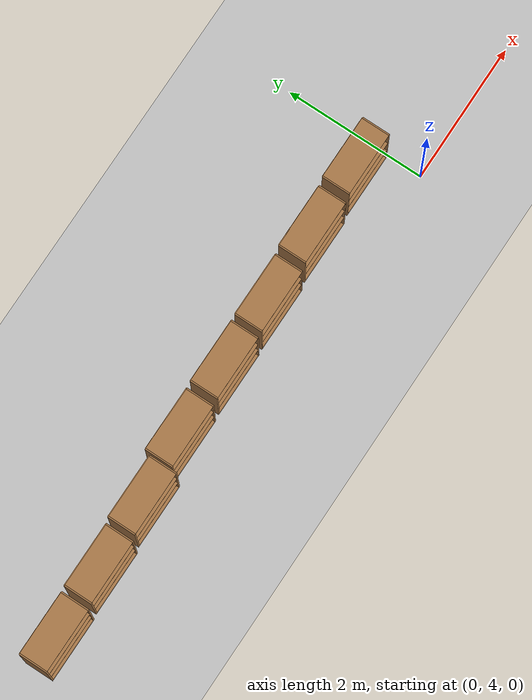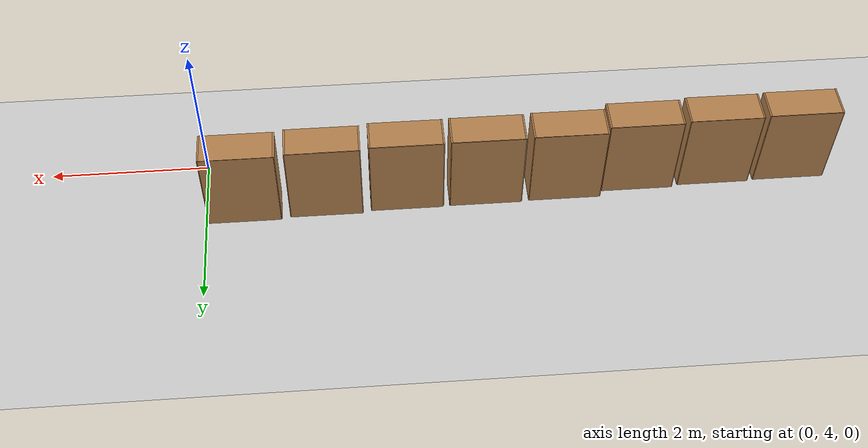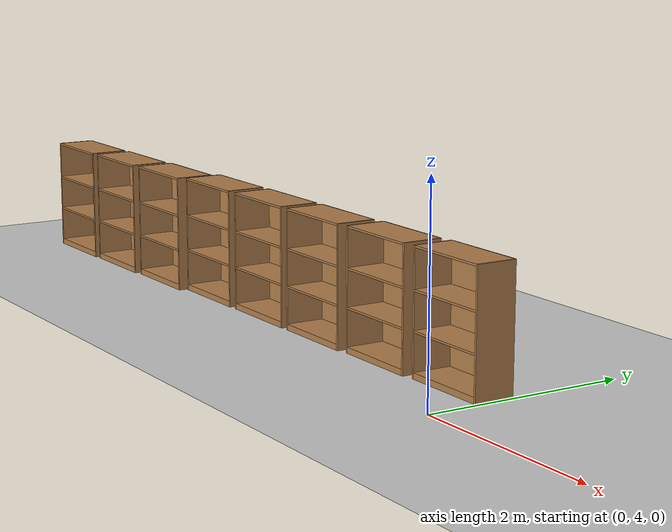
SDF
<sdf version="1.7">
 <world name="default">
  <model name="ground_plane">
   <static>1</static>
   <link name="link">
    <collision name="collision">
     <geometry><plane><normal>0 0 1</normal><size>100 100</size></plane></geometry>
     <surface>
      <contact><collide_bitmask>65535</collide_bitmask></contact>
      <friction><ode><mu>100</mu><mu2>50</mu2></ode></friction>
     </surface>
    </collision>
    <visual name="visual">
     <cast_shadows>0</cast_shadows>
     <geometry><plane><normal>0 0 1</normal><size>100 100</size></plane></geometry>
     <material>
      <script><uri>file://media/materials/scripts/gazebo.material</uri><name>Gazebo/Grey</name></script>
     </material>
    </visual>
   </link>
  </model>
  <model name="bookshelf">
   <static>1</static>
   <link name="link">
    <inertial><mass>1</mass></inertial>
    <collision name="back">
     <pose>0 0.005 0.6 0 -0 0</pose>
     <geometry><box><size>0.9 0.01 1.2</size></box></geometry>
    </collision>
    <visual name="visual1">
     <pose>0 0.005 0.6 0 -0 0</pose>
     <geometry><box><size>0.9 0.01 1.2</size></box></geometry>
     <material>
      <script><uri>file://media/materials/scripts/gazebo.material</uri><name>Gazebo/Wood</name></script>
     </material>
    </visual>
    <collision name="left_side">
     <pose>0.45 -0.195 0.6 0 -0 0</pose>
     <geometry><box><size>0.02 0.4 1.2</size></box></geometry>
    </collision>
    <visual name="visual2">
     <pose>0.45 -0.195 0.6 0 -0 0</pose>
     <geometry><box><size>0.02 0.4 1.2</size></box></geometry>
     <material>
      <script><uri>file://media/materials/scripts/gazebo.material</uri><name>Gazebo/Wood</name></script>
     </material>
    </visual>
    <collision name="right_side">
     <pose>-0.45 -0.195 0.6 0 -0 0</pose>
     <geometry><box><size>0.02 0.4 1.2</size></box></geometry>
    </collision>
    <visual name="visual3">
     <pose>-0.45 -0.195 0.6 0 -0 0</pose>
     <geometry><box><size>0.02 0.4 1.2</size></box></geometry>
     <material>
      <script><uri>file://media/materials/scripts/gazebo.material</uri><name>Gazebo/Wood</name></script>
     </material>
    </visual>
    <collision name="bottom">
     <pose>0 -0.195 0.03 0 -0 0</pose>
     <geometry><box><size>0.88 0.4 0.06</size></box></geometry>
    </collision>
    <visual name="visual4">
     <pose>0 -0.195 0.03 0 -0 0</pose>
     <geometry><box><size>0.88 0.4 0.06</size></box></geometry>
     <material>
      <script><uri>file://media/materials/scripts/gazebo.material</uri><name>Gazebo/Wood</name></script>
     </material>
    </visual>
    <collision name="top">
     <pose>0 -0.195 1.19 0 -0 0</pose>
     <geometry><box><size>0.88 0.4 0.02</size></box></geometry>
    </collision>
    <visual name="visual5">
     <pose>0 -0.195 1.19 0 -0 0</pose>
     <geometry><box><size>0.88 0.4 0.02</size></box></geometry>
     <material>
      <script><uri>file://media/materials/scripts/gazebo.material</uri><name>Gazebo/Wood</name></script>
     </material>
    </visual>
    <collision name="low_shelf">
     <pose>0 -0.195 0.43 0 -0 0</pose>
     <geometry><box><size>0.88 0.4 0.02</size></box></geometry>
    </collision>
    <visual name="visual6">
     <pose>0 -0.195 0.43 0 -0 0</pose>
     <geometry><box><size>0.88 0.4 0.02</size></box></geometry>
     <material>
      <script><uri>file://media/materials/scripts/gazebo.material</uri><name>Gazebo/Wood</name></script>
     </material>
    </visual>
    <collision name="high_shelf">
     <pose>0 -0.195 0.8 0 -0 0</pose>
     <geometry><box><size>0.88 0.4 0.02</size></box></geometry>
    </collision>
    <visual name="visual7">
     <pose>0 -0.195 0.8 0 -0 0</pose>
     <geometry><box><size>0.88 0.4 0.02</size></box></geometry>
     <material>
      <script><uri>file://media/materials/scripts/gazebo.material</uri><name>Gazebo/Wood</name></script>
     </material>
    </visual>
   </link>
   <pose>-7.44112 4.68011 0 0 -0 0</pose>
  </model>
  <model name="bookshelf_0">
   <static>1</static>
   <link name="link">
    <inertial><mass>1</mass></inertial>
    <collision name="back">
     <pose>0 0.005 0.6 0 -0 0</pose>
     <geometry><box><size>0.9 0.01 1.2</size></box></geometry>
    </collision>
    <visual name="visual1">
     <pose>0 0.005 0.6 0 -0 0</pose>
     <geometry><box><size>0.9 0.01 1.2</size></box></geometry>
     <material>
      <script><uri>file://media/materials/scripts/gazebo.material</uri><name>Gazebo/Wood</name></script>
     </material>
    </visual>
    <collision name="left_side">
     <pose>0.45 -0.195 0.6 0 -0 0</pose>
     <geometry><box><size>0.02 0.4 1.2</size></box></geometry>
    </collision>
    <visual name="visual2">
     <pose>0.45 -0.195 0.6 0 -0 0</pose>
     <geometry><box><size>0.02 0.4 1.2</size></box></geometry>
     <material>
      <script><uri>file://media/materials/scripts/gazebo.material</uri><name>Gazebo/Wood</name></script>
     </material>
    </visual>
    <collision name="right_side">
     <pose>-0.45 -0.195 0.6 0 -0 0</pose>
     <geometry><box><size>0.02 0.4 1.2</size></box></geometry>
    </collision>
    <visual name="visual3">
     <pose>-0.45 -0.195 0.6 0 -0 0</pose>
     <geometry><box><size>0.02 0.4 1.2</size></box></geometry>
     <material>
      <script><uri>file://media/materials/scripts/gazebo.material</uri><name>Gazebo/Wood</name></script>
     </material>
    </visual>
    <collision name="bottom">
     <pose>0 -0.195 0.03 0 -0 0</pose>
     <geometry><box><size>0.88 0.4 0.06</size></box></geometry>
    </collision>
    <visual name="visual4">
     <pose>0 -0.195 0.03 0 -0 0</pose>
     <geometry><box><size>0.88 0.4 0.06</size></box></geometry>
     <material>
      <script><uri>file://media/materials/scripts/gazebo.material</uri><name>Gazebo/Wood</name></script>
     </material>
    </visual>
    <collision name="top">
     <pose>0 -0.195 1.19 0 -0 0</pose>
     <geometry><box><size>0.88 0.4 0.02</size></box></geometry>
    </collision>
    <visual name="visual5">
     <pose>0 -0.195 1.19 0 -0 0</pose>
     <geometry><box><size>0.88 0.4 0.02</size></box></geometry>
     <material>
      <script><uri>file://media/materials/scripts/gazebo.material</uri><name>Gazebo/Wood</name></script>
     </material>
    </visual>
    <collision name="low_shelf">
     <pose>0 -0.195 0.43 0 -0 0</pose>
     <geometry><box><size>0.88 0.4 0.02</size></box></geometry>
    </collision>
    <visual name="visual6">
     <pose>0 -0.195 0.43 0 -0 0</pose>
     <geometry><box><size>0.88 0.4 0.02</size></box></geometry>
     <material>
      <script><uri>file://media/materials/scripts/gazebo.material</uri><name>Gazebo/Wood</name></script>
     </material>
    </visual>
    <collision name="high_shelf">
     <pose>0 -0.195 0.8 0 -0 0</pose>
     <geometry><box><size>0.88 0.4 0.02</size></box></geometry>
    </collision>
    <visual name="visual7">
     <pose>0 -0.195 0.8 0 -0 0</pose>
     <geometry><box><size>0.88 0.4 0.02</size></box></geometry>
     <material>
      <script><uri>file://media/materials/scripts/gazebo.material</uri><name>Gazebo/Wood</name></script>
     </material>
    </visual>
   </link>
   <pose>-6.45559 4.69615 0 0 -0 0</pose>
  </model>
  <model name="bookshelf_1">
   <static>1</static>
   <link name="link">
    <inertial><mass>1</mass></inertial>
    <collision name="back">
     <pose>0 0.005 0.6 0 -0 0</pose>
     <geometry><box><size>0.9 0.01 1.2</size></box></geometry>
    </collision>
    <visual name="visual1">
     <pose>0 0.005 0.6 0 -0 0</pose>
     <geometry><box><size>0.9 0.01 1.2</size></box></geometry>
     <material>
      <script><uri>file://media/materials/scripts/gazebo.material</uri><name>Gazebo/Wood</name></script>
     </material>
    </visual>
    <collision name="left_side">
     <pose>0.45 -0.195 0.6 0 -0 0</pose>
     <geometry><box><size>0.02 0.4 1.2</size></box></geometry>
    </collision>
    <visual name="visual2">
     <pose>0.45 -0.195 0.6 0 -0 0</pose>
     <geometry><box><size>0.02 0.4 1.2</size></box></geometry>
     <material>
      <script><uri>file://media/materials/scripts/gazebo.material</uri><name>Gazebo/Wood</name></script>
     </material>
    </visual>
    <collision name="right_side">
     <pose>-0.45 -0.195 0.6 0 -0 0</pose>
     <geometry><box><size>0.02 0.4 1.2</size></box></geometry>
    </collision>
    <visual name="visual3">
     <pose>-0.45 -0.195 0.6 0 -0 0</pose>
     <geometry><box><size>0.02 0.4 1.2</size></box></geometry>
     <material>
      <script><uri>file://media/materials/scripts/gazebo.material</uri><name>Gazebo/Wood</name></script>
     </material>
    </visual>
    <collision name="bottom">
     <pose>0 -0.195 0.03 0 -0 0</pose>
     <geometry><box><size>0.88 0.4 0.06</size></box></geometry>
    </collision>
    <visual name="visual4">
     <pose>0 -0.195 0.03 0 -0 0</pose>
     <geometry><box><size>0.88 0.4 0.06</size></box></geometry>
     <material>
      <script><uri>file://media/materials/scripts/gazebo.material</uri><name>Gazebo/Wood</name></script>
     </material>
    </visual>
    <collision name="top">
     <pose>0 -0.195 1.19 0 -0 0</pose>
     <geometry><box><size>0.88 0.4 0.02</size></box></geometry>
    </collision>
    <visual name="visual5">
     <pose>0 -0.195 1.19 0 -0 0</pose>
     <geometry><box><size>0.88 0.4 0.02</size></box></geometry>
     <material>
      <script><uri>file://media/materials/scripts/gazebo.material</uri><name>Gazebo/Wood</name></script>
     </material>
    </visual>
    <collision name="low_shelf">
     <pose>0 -0.195 0.43 0 -0 0</pose>
     <geometry><box><size>0.88 0.4 0.02</size></box></geometry>
    </collision>
    <visual name="visual6">
     <pose>0 -0.195 0.43 0 -0 0</pose>
     <geometry><box><size>0.88 0.4 0.02</size></box></geometry>
     <material>
      <script><uri>file://media/materials/scripts/gazebo.material</uri><name>Gazebo/Wood</name></script>
     </material>
    </visual>
    <collision name="high_shelf">
     <pose>0 -0.195 0.8 0 -0 0</pose>
     <geometry><box><size>0.88 0.4 0.02</size></box></geometry>
    </collision>
    <visual name="visual7">
     <pose>0 -0.195 0.8 0 -0 0</pose>
     <geometry><box><size>0.88 0.4 0.02</size></box></geometry>
     <material>
      <script><uri>file://media/materials/scripts/gazebo.material</uri><name>Gazebo/Wood</name></script>
     </material>
    </visual>
   </link>
   <pose>-5.46795 4.72644 0 0 -0 0</pose>
  </model>
  <model name="bookshelf_2">
   <static>1</static>
   <link name="link">
    <inertial><mass>1</mass></inertial>
    <collision name="back">
     <pose>0 0.005 0.6 0 -0 0</pose>
     <geometry><box><size>0.9 0.01 1.2</size></box></geometry>
    </collision>
    <visual name="visual1">
     <pose>0 0.005 0.6 0 -0 0</pose>
     <geometry><box><size>0.9 0.01 1.2</size></box></geometry>
     <material>
      <script><uri>file://media/materials/scripts/gazebo.material</uri><name>Gazebo/Wood</name></script>
     </material>
    </visual>
    <collision name="left_side">
     <pose>0.45 -0.195 0.6 0 -0 0</pose>
     <geometry><box><size>0.02 0.4 1.2</size></box></geometry>
    </collision>
    <visual name="visual2">
     <pose>0.45 -0.195 0.6 0 -0 0</pose>
     <geometry><box><size>0.02 0.4 1.2</size></box></geometry>
     <material>
      <script><uri>file://media/materials/scripts/gazebo.material</uri><name>Gazebo/Wood</name></script>
     </material>
    </visual>
    <collision name="right_side">
     <pose>-0.45 -0.195 0.6 0 -0 0</pose>
     <geometry><box><size>0.02 0.4 1.2</size></box></geometry>
    </collision>
    <visual name="visual3">
     <pose>-0.45 -0.195 0.6 0 -0 0</pose>
     <geometry><box><size>0.02 0.4 1.2</size></box></geometry>
     <material>
      <script><uri>file://media/materials/scripts/gazebo.material</uri><name>Gazebo/Wood</name></script>
     </material>
    </visual>
    <collision name="bottom">
     <pose>0 -0.195 0.03 0 -0 0</pose>
     <geometry><box><size>0.88 0.4 0.06</size></box></geometry>
    </collision>
    <visual name="visual4">
     <pose>0 -0.195 0.03 0 -0 0</pose>
     <geometry><box><size>0.88 0.4 0.06</size></box></geometry>
     <material>
      <script><uri>file://media/materials/scripts/gazebo.material</uri><name>Gazebo/Wood</name></script>
     </material>
    </visual>
    <collision name="top">
     <pose>0 -0.195 1.19 0 -0 0</pose>
     <geometry><box><size>0.88 0.4 0.02</size></box></geometry>
    </collision>
    <visual name="visual5">
     <pose>0 -0.195 1.19 0 -0 0</pose>
     <geometry><box><size>0.88 0.4 0.02</size></box></geometry>
     <material>
      <script><uri>file://media/materials/scripts/gazebo.material</uri><name>Gazebo/Wood</name></script>
     </material>
    </visual>
    <collision name="low_shelf">
     <pose>0 -0.195 0.43 0 -0 0</pose>
     <geometry><box><size>0.88 0.4 0.02</size></box></geometry>
    </collision>
    <visual name="visual6">
     <pose>0 -0.195 0.43 0 -0 0</pose>
     <geometry><box><size>0.88 0.4 0.02</size></box></geometry>
     <material>
      <script><uri>file://media/materials/scripts/gazebo.material</uri><name>Gazebo/Wood</name></script>
     </material>
    </visual>
    <collision name="high_shelf">
     <pose>0 -0.195 0.8 0 -0 0</pose>
     <geometry><box><size>0.88 0.4 0.02</size></box></geometry>
    </collision>
    <visual name="visual7">
     <pose>0 -0.195 0.8 0 -0 0</pose>
     <geometry><box><size>0.88 0.4 0.02</size></box></geometry>
     <material>
      <script><uri>file://media/materials/scripts/gazebo.material</uri><name>Gazebo/Wood</name></script>
     </material>
    </visual>
   </link>
   <pose>-4.52722 4.81359 0 0 -0 0</pose>
  </model>
  <model name="bookshelf_3">
   <static>1</static>
   <link name="link">
    <inertial><mass>1</mass></inertial>
    <collision name="back">
     <pose>0 0.005 0.6 0 -0 0</pose>
     <geometry><box><size>0.9 0.01 1.2</size></box></geometry>
    </collision>
    <visual name="visual1">
     <pose>0 0.005 0.6 0 -0 0</pose>
     <geometry><box><size>0.9 0.01 1.2</size></box></geometry>
     <material>
      <script><uri>file://media/materials/scripts/gazebo.material</uri><name>Gazebo/Wood</name></script>
     </material>
    </visual>
    <collision name="left_side">
     <pose>0.45 -0.195 0.6 0 -0 0</pose>
     <geometry><box><size>0.02 0.4 1.2</size></box></geometry>
    </collision>
    <visual name="visual2">
     <pose>0.45 -0.195 0.6 0 -0 0</pose>
     <geometry><box><size>0.02 0.4 1.2</size></box></geometry>
     <material>
      <script><uri>file://media/materials/scripts/gazebo.material</uri><name>Gazebo/Wood</name></script>
     </material>
    </visual>
    <collision name="right_side">
     <pose>-0.45 -0.195 0.6 0 -0 0</pose>
     <geometry><box><size>0.02 0.4 1.2</size></box></geometry>
    </collision>
    <visual name="visual3">
     <pose>-0.45 -0.195 0.6 0 -0 0</pose>
     <geometry><box><size>0.02 0.4 1.2</size></box></geometry>
     <material>
      <script><uri>file://media/materials/scripts/gazebo.material</uri><name>Gazebo/Wood</name></script>
     </material>
    </visual>
    <collision name="bottom">
     <pose>0 -0.195 0.03 0 -0 0</pose>
     <geometry><box><size>0.88 0.4 0.06</size></box></geometry>
    </collision>
    <visual name="visual4">
     <pose>0 -0.195 0.03 0 -0 0</pose>
     <geometry><box><size>0.88 0.4 0.06</size></box></geometry>
     <material>
      <script><uri>file://media/materials/scripts/gazebo.material</uri><name>Gazebo/Wood</name></script>
     </material>
    </visual>
    <collision name="top">
     <pose>0 -0.195 1.19 0 -0 0</pose>
     <geometry><box><size>0.88 0.4 0.02</size></box></geometry>
    </collision>
    <visual name="visual5">
     <pose>0 -0.195 1.19 0 -0 0</pose>
     <geometry><box><size>0.88 0.4 0.02</size></box></geometry>
     <material>
      <script><uri>file://media/materials/scripts/gazebo.material</uri><name>Gazebo/Wood</name></script>
     </material>
    </visual>
    <collision name="low_shelf">
     <pose>0 -0.195 0.43 0 -0 0</pose>
     <geometry><box><size>0.88 0.4 0.02</size></box></geometry>
    </collision>
    <visual name="visual6">
     <pose>0 -0.195 0.43 0 -0 0</pose>
     <geometry><box><size>0.88 0.4 0.02</size></box></geometry>
     <material>
      <script><uri>file://media/materials/scripts/gazebo.material</uri><name>Gazebo/Wood</name></script>
     </material>
    </visual>
    <collision name="high_shelf">
     <pose>0 -0.195 0.8 0 -0 0</pose>
     <geometry><box><size>0.88 0.4 0.02</size></box></geometry>
    </collision>
    <visual name="visual7">
     <pose>0 -0.195 0.8 0 -0 0</pose>
     <geometry><box><size>0.88 0.4 0.02</size></box></geometry>
     <material>
      <script><uri>file://media/materials/scripts/gazebo.material</uri><name>Gazebo/Wood</name></script>
     </material>
    </visual>
   </link>
   <pose>-3.52092 4.82632 0 0 -0 0</pose>
  </model>
  <model name="bookshelf_4">
   <static>1</static>
   <link name="link">
    <inertial><mass>1</mass></inertial>
    <collision name="back">
     <pose>0 0.005 0.6 0 -0 0</pose>
     <geometry><box><size>0.9 0.01 1.2</size></box></geometry>
    </collision>
    <visual name="visual1">
     <pose>0 0.005 0.6 0 -0 0</pose>
     <geometry><box><size>0.9 0.01 1.2</size></box></geometry>
     <material>
      <script><uri>file://media/materials/scripts/gazebo.material</uri><name>Gazebo/Wood</name></script>
     </material>
    </visual>
    <collision name="left_side">
     <pose>0.45 -0.195 0.6 0 -0 0</pose>
     <geometry><box><size>0.02 0.4 1.2</size></box></geometry>
    </collision>
    <visual name="visual2">
     <pose>0.45 -0.195 0.6 0 -0 0</pose>
     <geometry><box><size>0.02 0.4 1.2</size></box></geometry>
     <material>
      <script><uri>file://media/materials/scripts/gazebo.material</uri><name>Gazebo/Wood</name></script>
     </material>
    </visual>
    <collision name="right_side">
     <pose>-0.45 -0.195 0.6 0 -0 0</pose>
     <geometry><box><size>0.02 0.4 1.2</size></box></geometry>
    </collision>
    <visual name="visual3">
     <pose>-0.45 -0.195 0.6 0 -0 0</pose>
     <geometry><box><size>0.02 0.4 1.2</size></box></geometry>
     <material>
      <script><uri>file://media/materials/scripts/gazebo.material</uri><name>Gazebo/Wood</name></script>
     </material>
    </visual>
    <collision name="bottom">
     <pose>0 -0.195 0.03 0 -0 0</pose>
     <geometry><box><size>0.88 0.4 0.06</size></box></geometry>
    </collision>
    <visual name="visual4">
     <pose>0 -0.195 0.03 0 -0 0</pose>
     <geometry><box><size>0.88 0.4 0.06</size></box></geometry>
     <material>
      <script><uri>file://media/materials/scripts/gazebo.material</uri><name>Gazebo/Wood</name></script>
     </material>
    </visual>
    <collision name="top">
     <pose>0 -0.195 1.19 0 -0 0</pose>
     <geometry><box><size>0.88 0.4 0.02</size></box></geometry>
    </collision>
    <visual name="visual5">
     <pose>0 -0.195 1.19 0 -0 0</pose>
     <geometry><box><size>0.88 0.4 0.02</size></box></geometry>
     <material>
      <script><uri>file://media/materials/scripts/gazebo.material</uri><name>Gazebo/Wood</name></script>
     </material>
    </visual>
    <collision name="low_shelf">
     <pose>0 -0.195 0.43 0 -0 0</pose>
     <geometry><box><size>0.88 0.4 0.02</size></box></geometry>
    </collision>
    <visual name="visual6">
     <pose>0 -0.195 0.43 0 -0 0</pose>
     <geometry><box><size>0.88 0.4 0.02</size></box></geometry>
     <material>
      <script><uri>file://media/materials/scripts/gazebo.material</uri><name>Gazebo/Wood</name></script>
     </material>
    </visual>
    <collision name="high_shelf">
     <pose>0 -0.195 0.8 0 -0 0</pose>
     <geometry><box><size>0.88 0.4 0.02</size></box></geometry>
    </collision>
    <visual name="visual7">
     <pose>0 -0.195 0.8 0 -0 0</pose>
     <geometry><box><size>0.88 0.4 0.02</size></box></geometry>
     <material>
      <script><uri>file://media/materials/scripts/gazebo.material</uri><name>Gazebo/Wood</name></script>
     </material>
    </visual>
   </link>
   <pose>-2.52625 4.83561 0 0 -0 0</pose>
  </model>
  <model name="bookshelf_5">
   <static>1</static>
   <link name="link">
    <inertial><mass>1</mass></inertial>
    <collision name="back">
     <pose>0 0.005 0.6 0 -0 0</pose>
     <geometry><box><size>0.9 0.01 1.2</size></box></geometry>
    </collision>
    <visual name="visual1">
     <pose>0 0.005 0.6 0 -0 0</pose>
     <geometry><box><size>0.9 0.01 1.2</size></box></geometry>
     <material>
      <script><uri>file://media/materials/scripts/gazebo.material</uri><name>Gazebo/Wood</name></script>
     </material>
    </visual>
    <collision name="left_side">
     <pose>0.45 -0.195 0.6 0 -0 0</pose>
     <geometry><box><size>0.02 0.4 1.2</size></box></geometry>
    </collision>
    <visual name="visual2">
     <pose>0.45 -0.195 0.6 0 -0 0</pose>
     <geometry><box><size>0.02 0.4 1.2</size></box></geometry>
     <material>
      <script><uri>file://media/materials/scripts/gazebo.material</uri><name>Gazebo/Wood</name></script>
     </material>
    </visual>
    <collision name="right_side">
     <pose>-0.45 -0.195 0.6 0 -0 0</pose>
     <geometry><box><size>0.02 0.4 1.2</size></box></geometry>
    </collision>
    <visual name="visual3">
     <pose>-0.45 -0.195 0.6 0 -0 0</pose>
     <geometry><box><size>0.02 0.4 1.2</size></box></geometry>
     <material>
      <script><uri>file://media/materials/scripts/gazebo.material</uri><name>Gazebo/Wood</name></script>
     </material>
    </visual>
    <collision name="bottom">
     <pose>0 -0.195 0.03 0 -0 0</pose>
     <geometry><box><size>0.88 0.4 0.06</size></box></geometry>
    </collision>
    <visual name="visual4">
     <pose>0 -0.195 0.03 0 -0 0</pose>
     <geometry><box><size>0.88 0.4 0.06</size></box></geometry>
     <material>
      <script><uri>file://media/materials/scripts/gazebo.material</uri><name>Gazebo/Wood</name></script>
     </material>
    </visual>
    <collision name="top">
     <pose>0 -0.195 1.19 0 -0 0</pose>
     <geometry><box><size>0.88 0.4 0.02</size></box></geometry>
    </collision>
    <visual name="visual5">
     <pose>0 -0.195 1.19 0 -0 0</pose>
     <geometry><box><size>0.88 0.4 0.02</size></box></geometry>
     <material>
      <script><uri>file://media/materials/scripts/gazebo.material</uri><name>Gazebo/Wood</name></script>
     </material>
    </visual>
    <collision name="low_shelf">
     <pose>0 -0.195 0.43 0 -0 0</pose>
     <geometry><box><size>0.88 0.4 0.02</size></box></geometry>
    </collision>
    <visual name="visual6">
     <pose>0 -0.195 0.43 0 -0 0</pose>
     <geometry><box><size>0.88 0.4 0.02</size></box></geometry>
     <material>
      <script><uri>file://media/materials/scripts/gazebo.material</uri><name>Gazebo/Wood</name></script>
     </material>
    </visual>
    <collision name="high_shelf">
     <pose>0 -0.195 0.8 0 -0 0</pose>
     <geometry><box><size>0.88 0.4 0.02</size></box></geometry>
    </collision>
    <visual name="visual7">
     <pose>0 -0.195 0.8 0 -0 0</pose>
     <geometry><box><size>0.88 0.4 0.02</size></box></geometry>
     <material>
      <script><uri>file://media/materials/scripts/gazebo.material</uri><name>Gazebo/Wood</name></script>
     </material>
    </visual>
   </link>
   <pose>-1.50878 4.86569 0 0 -0 0</pose>
  </model>
  <model name="bookshelf_6">
   <static>1</static>
   <link name="link">
    <inertial><mass>1</mass></inertial>
    <collision name="back">
     <pose>0 0.005 0.6 0 -0 0</pose>
     <geometry><box><size>0.9 0.01 1.2</size></box></geometry>
    </collision>
    <visual name="visual1">
     <pose>0 0.005 0.6 0 -0 0</pose>
     <geometry><box><size>0.9 0.01 1.2</size></box></geometry>
     <material>
      <script><uri>file://media/materials/scripts/gazebo.material</uri><name>Gazebo/Wood</name></script>
     </material>
    </visual>
    <collision name="left_side">
     <pose>0.45 -0.195 0.6 0 -0 0</pose>
     <geometry><box><size>0.02 0.4 1.2</size></box></geometry>
    </collision>
    <visual name="visual2">
     <pose>0.45 -0.195 0.6 0 -0 0</pose>
     <geometry><box><size>0.02 0.4 1.2</size></box></geometry>
     <material>
      <script><uri>file://media/materials/scripts/gazebo.material</uri><name>Gazebo/Wood</name></script>
     </material>
    </visual>
    <collision name="right_side">
     <pose>-0.45 -0.195 0.6 0 -0 0</pose>
     <geometry><box><size>0.02 0.4 1.2</size></box></geometry>
    </collision>
    <visual name="visual3">
     <pose>-0.45 -0.195 0.6 0 -0 0</pose>
     <geometry><box><size>0.02 0.4 1.2</size></box></geometry>
     <material>
      <script><uri>file://media/materials/scripts/gazebo.material</uri><name>Gazebo/Wood</name></script>
     </material>
    </visual>
    <collision name="bottom">
     <pose>0 -0.195 0.03 0 -0 0</pose>
     <geometry><box><size>0.88 0.4 0.06</size></box></geometry>
    </collision>
    <visual name="visual4">
     <pose>0 -0.195 0.03 0 -0 0</pose>
     <geometry><box><size>0.88 0.4 0.06</size></box></geometry>
     <material>
      <script><uri>file://media/materials/scripts/gazebo.material</uri><name>Gazebo/Wood</name></script>
     </material>
    </visual>
    <collision name="top">
     <pose>0 -0.195 1.19 0 -0 0</pose>
     <geometry><box><size>0.88 0.4 0.02</size></box></geometry>
    </collision>
    <visual name="visual5">
     <pose>0 -0.195 1.19 0 -0 0</pose>
     <geometry><box><size>0.88 0.4 0.02</size></box></geometry>
     <material>
      <script><uri>file://media/materials/scripts/gazebo.material</uri><name>Gazebo/Wood</name></script>
     </material>
    </visual>
    <collision name="low_shelf">
     <pose>0 -0.195 0.43 0 -0 0</pose>
     <geometry><box><size>0.88 0.4 0.02</size></box></geometry>
    </collision>
    <visual name="visual6">
     <pose>0 -0.195 0.43 0 -0 0</pose>
     <geometry><box><size>0.88 0.4 0.02</size></box></geometry>
     <material>
      <script><uri>file://media/materials/scripts/gazebo.material</uri><name>Gazebo/Wood</name></script>
     </material>
    </visual>
    <collision name="high_shelf">
     <pose>0 -0.195 0.8 0 -0 0</pose>
     <geometry><box><size>0.88 0.4 0.02</size></box></geometry>
    </collision>
    <visual name="visual7">
     <pose>0 -0.195 0.8 0 -0 0</pose>
     <geometry><box><size>0.88 0.4 0.02</size></box></geometry>
     <material>
      <script><uri>file://media/materials/scripts/gazebo.material</uri><name>Gazebo/Wood</name></script>
     </material>
    </visual>
   </link>
   <pose>-0.483978 4.89399 0 0 -0 0</pose>
  </model>
 </world>
</sdf>
